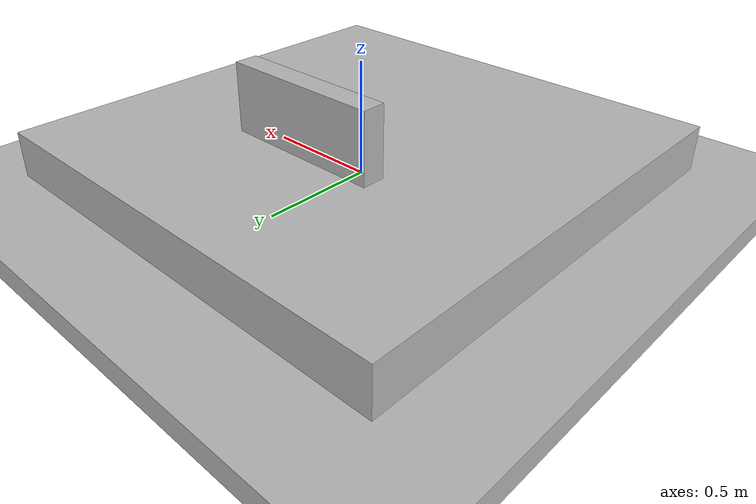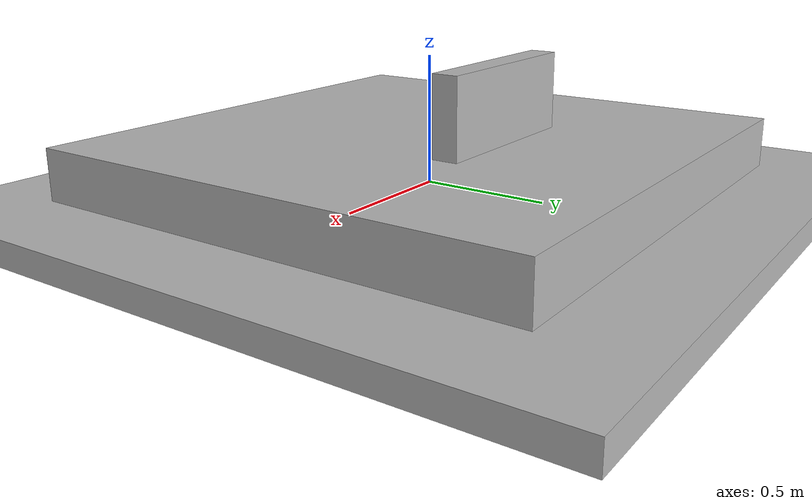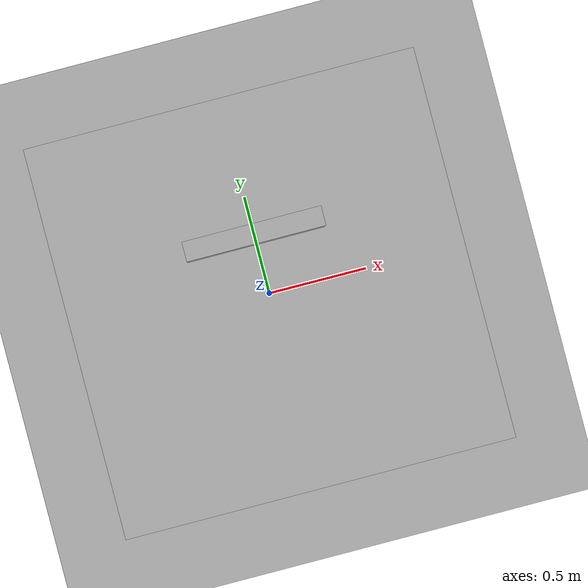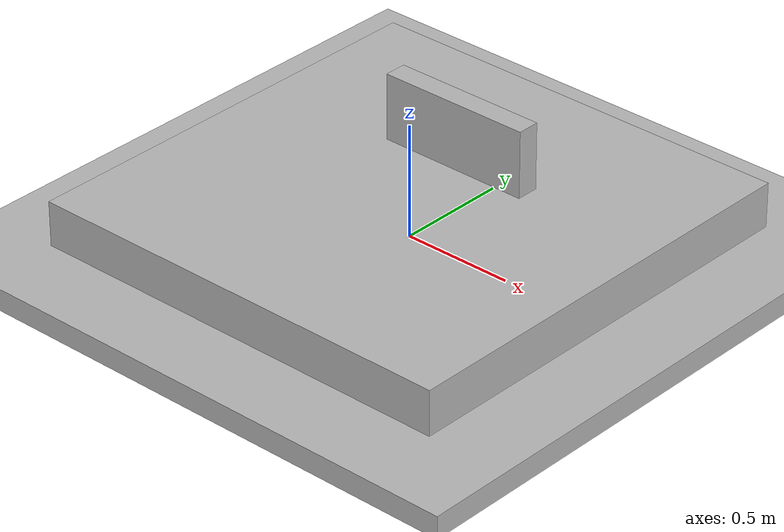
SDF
<?xml version="1.0"?>
<sdf version="1.6">
  <world name="room">

    <!-- Optional tweaks to increase performance -->
    <scene>
        <shadows>false</shadows>
    </scene>
    <physics type="ode">
        <real_time_update_rate>1000</real_time_update_rate>
        <max_step_size>0.001</max_step_size>
    </physics>

    <include>
      <uri>model://sun</uri>
    </include>

    <model name="floor">
      <static>true</static>
      <pose>0 0 -0.05 0 0 0</pose>
      <link name="tile">
        <pose>0 0 0.001 0 0 0</pose>
        <visual name="visual">
          <geometry>
            <box>
              <size>2 2 0.5</size>
            </box>
          </geometry>
          <material>
            <script>
              <uri>model://robocake_gazebo/models/floor.material</uri>
              <name>Floor</name>
            </script>
          </material>
        </visual>
        <collision name="collision">
          <geometry>
            <box>
              <size>2 2 0.5</size>
            </box>
          </geometry>
        </collision>
      </link>
      <link name="ground">
        <visual name="visual">
          <geometry>
            <box>
              <size>20 20 0.1</size>
            </box>
          </geometry>
          <material>
            <script>
              <uri>model://robocake_gazebo/models/floor.material</uri>
              <name>Ground</name>
            </script>
          </material>
        </visual>
        <collision name="collision">
          <geometry>
            <box>
              <size>20 20 0.1</size>
            </box>
          </geometry>
        </collision>
      </link>

      <link name="wall_1">
        <pose>0 0.3 0.3 0 0 0</pose>
        <visual name="visual">
          <geometry>
            <box>
              <size>0.7 0.1 0.5</size>
            </box>
          </geometry>
          <material>
            <script>
              <uri>model://robocake_gazebo/models/floor.material</uri>
              <name>Ground</name>
            </script>
          </material>
        </visual>
        <collision name="collision">
          <geometry>
            <box>
              <size>0.7 0.1 0.5</size>
            </box>
          </geometry>
        </collision>
      </link>

    </model>
  </world>
</sdf>
